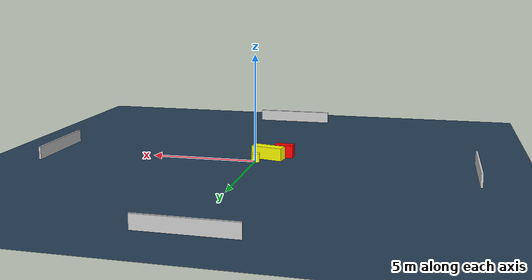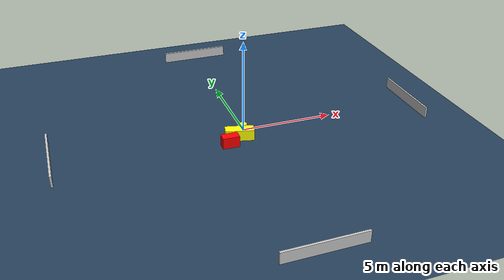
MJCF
<?xml version="1.0" ?>
<mujoco model="generated_environment">
  <option timestep="0.01" integrator="RK4" cone="elliptic"/>
  <default>
    <geom density="1"/>
  </default>
  <asset>
    <texture builtin="gradient" height="3072" name="skybox" rgb1="0.3 0.5 0.7" rgb2="0 0 0" type="skybox" width="512"/>
    <texture builtin="checker" height="300" name="groundplane" rgb1="0.2 0.3 0.4" rgb2="0.1 0.2 0.3" type="2d" width="300"/>
    <material name="groundplane" reflectance="0.2" texrepeat="5 5" texture="groundplane"/>
  </asset>
  <worldbody>
    <light dir="0 0 -1" directional="true" pos="0 0 1.5"/>
    <geom condim="3" friction="0.5 0.005 0.001" material="groundplane" name="floor" pos="0 0 0" size="0 0 0.05" type="plane"/>
    <body name="walls">
      <geom name="wall_1" condim="4" pos="-10.0 0.0 0.3" rgba="0.800000011920929 0.800000011920929 0.800000011920929 1.0" size="0.05 2.0 0.3" type="box"/>
      <geom name="wall_2" condim="4" pos="10.0 0.0 0.3" rgba="0.800000011920929 0.800000011920929 0.800000011920929 1.0" size="0.05 2.0 0.3" type="box"/>
      <geom name="wall_3" condim="4" pos="0.0 -10.0 0.3" rgba="0.800000011920929 0.800000011920929 0.800000011920929 1.0" size="2.0 0.05 0.3" type="box"/>
      <geom name="wall_4" condim="4" pos="0.0 10.0 0.3" rgba="0.800000011920929 0.800000011920929 0.800000011920929 1.0" size="2.0 0.05 0.3" type="box"/>
    </body>
    <body name="robot">
      <joint name="joint_x" type="slide" pos="0 0 0" axis="1 0 0"/>
      <joint name="joint_y" type="slide" pos="0 0 0" axis="0 1 0"/>
      <geom name="robot" type="cylinder" pos="0.0 0.0 0.2" size="0.2 0.2 0.0" mass="5.0" friction="1.0 0.005 0.0001" condim="4" rgba="1.0 1.0 0.0 1.0"/>
    </body>
    <body name="obstacle_1_movable">
      <geom name="obstacle_1_movable" condim="4" pos="-0.45906461452809527 -0.7247038845017227 0.3" euler="0 0 256.9890213381986" friction="0.0 0.005 0.001" rgba="1.0 1.0 0.0 1.0" size="0.27298733569044265 0.756827079451081 0.3" type="box" mass="0.1"/>
      <joint type="free"/>
    </body>
    <body name="obstacle_2_static">
      <geom name="obstacle_2_static" condim="4" pos="-1.1402485758538485 -1.2534999541158722 0.3" euler="0 0 268.5618485536313" friction="0.0 0.005 0.001" rgba="1.0 0.0 0.0 1.0" size="0.2381776707803091 0.44368796813140815 0.3" type="box"/>
    </body>
  </worldbody>
  <actuator>
    <motor name="actuator_x" joint="joint_x" gear="1" ctrlrange="-1 1"/>
    <motor name="actuator_y" joint="joint_y" gear="1" ctrlrange="-1 1"/>
  </actuator>
</mujoco>
